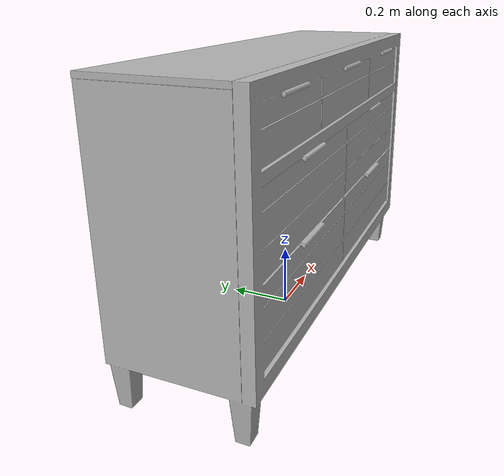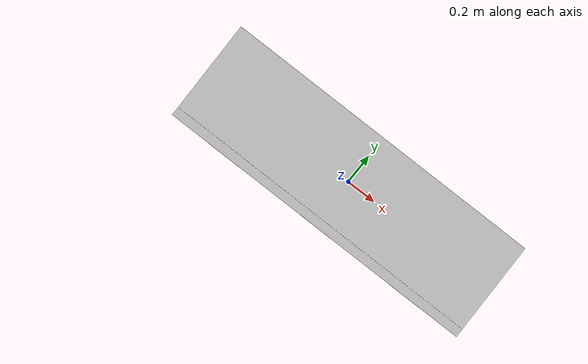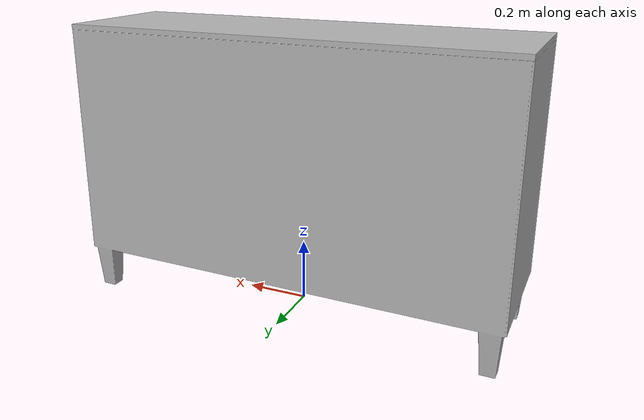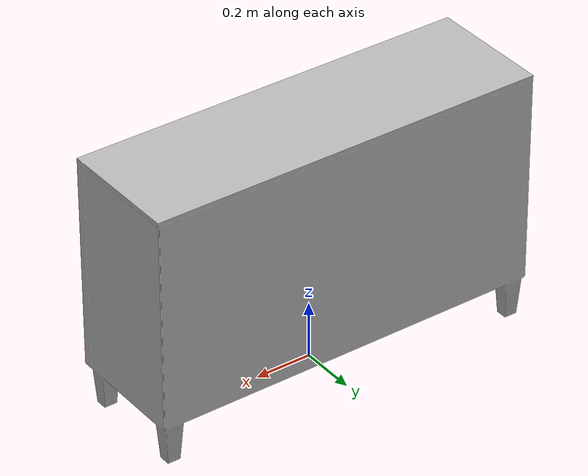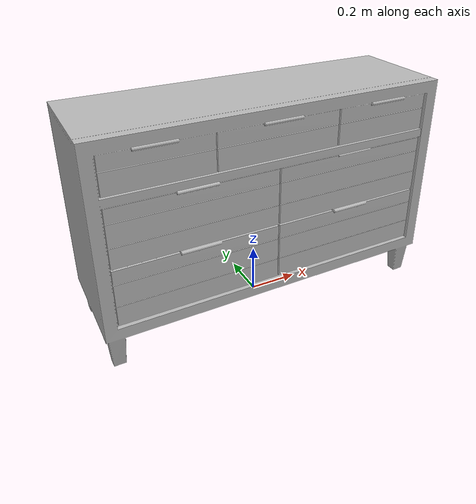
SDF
<sdf version="1.6">
	<model name="Dressers_O8ca5eacdbd08_lod0">
		<link name="main_link">
			<visual name="visual_RootNode">
				<geometry>
					<mesh>
						<uri>model://Dressers_O8ca5eacdbd08_lod0/meshes/visual_RootNode.dae</uri>
					</mesh>
				</geometry>
			</visual>
			<collision name="collision_RootNode_lod0_0">
				<geometry>
					<mesh>
						<uri>model://Dressers_O8ca5eacdbd08_lod0/meshes/collision_RootNode_lod0_0.dae</uri>
					</mesh>
				</geometry>
			</collision>
		</link>
	</model>
</sdf>
